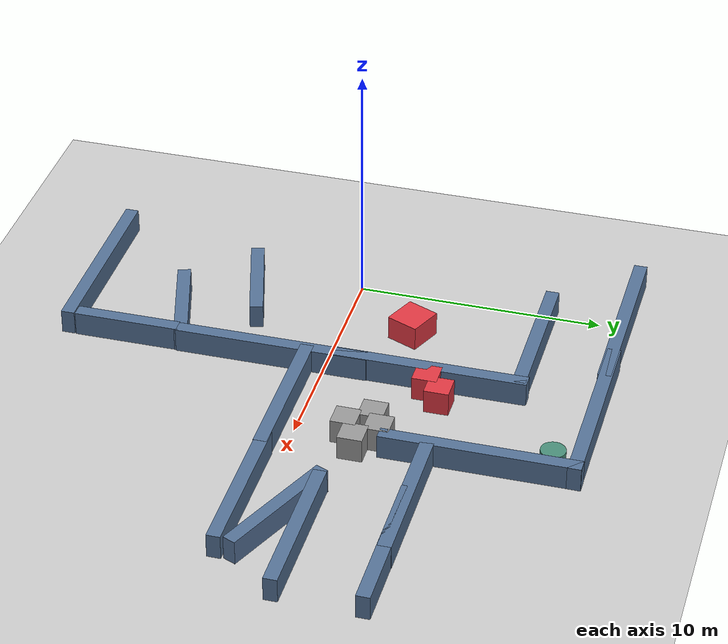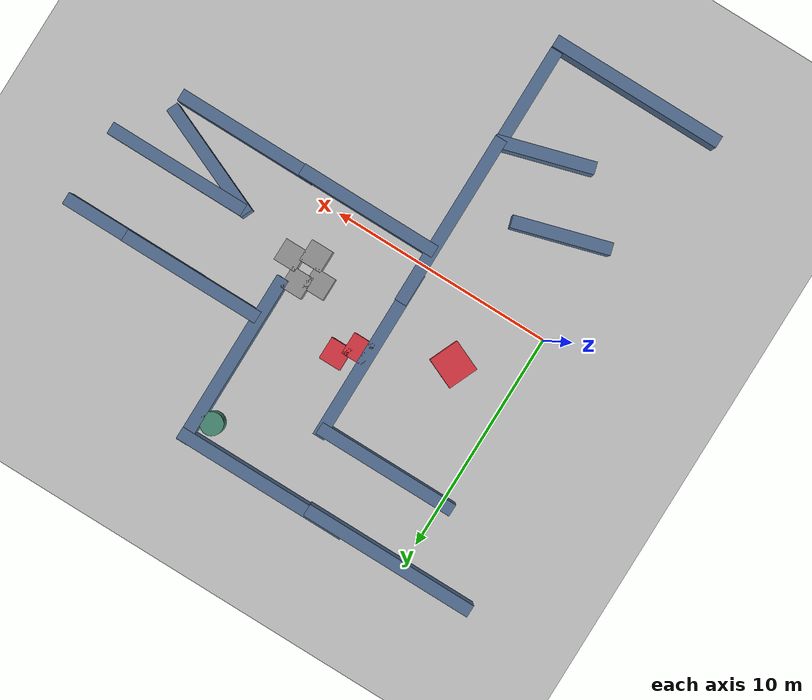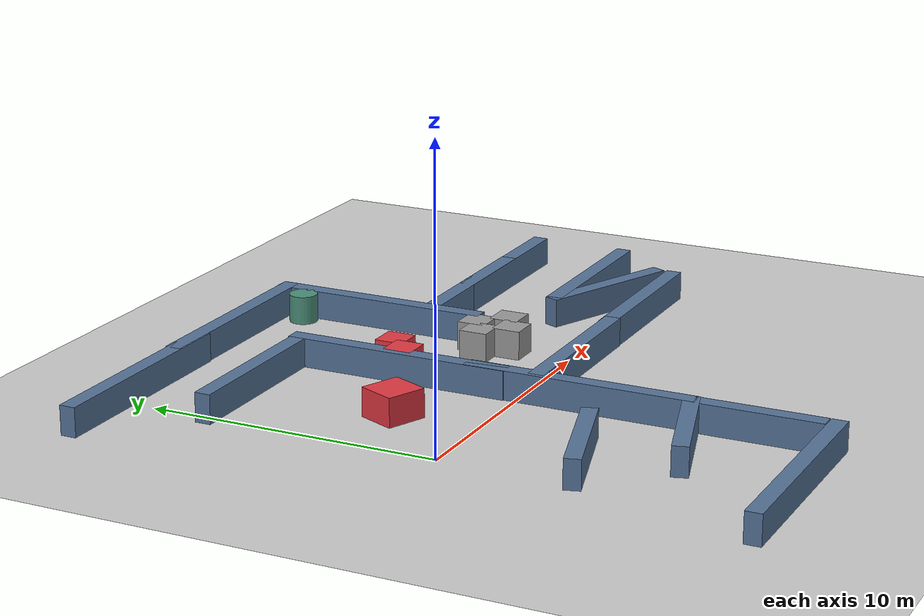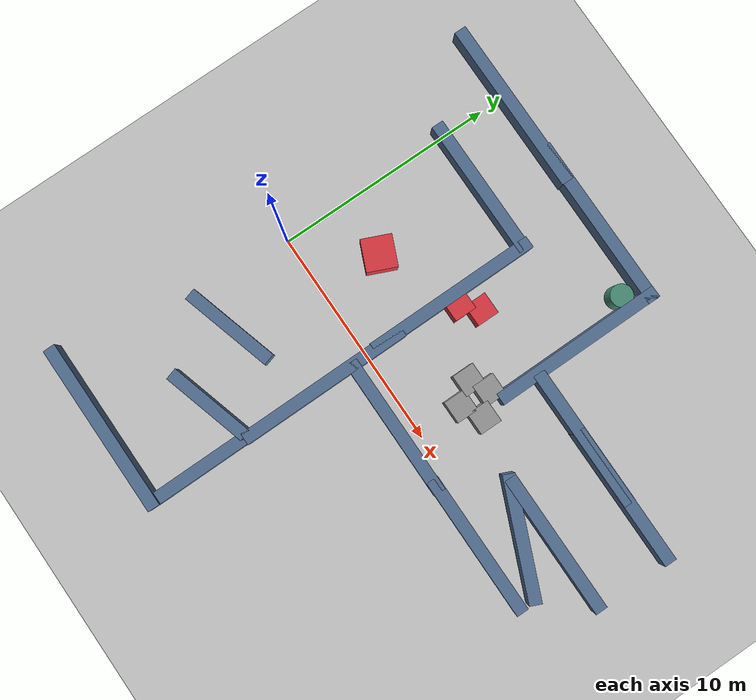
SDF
<sdf version="1.6">
 <world name="default">
  <model name="ground_plane">
   <static>1</static>
   <link name="link">
    <collision name="collision">
     <geometry><plane><normal>0 0 1</normal><size>100 100</size></plane></geometry>
     <surface><friction><ode><mu>100</mu><mu2>50</mu2></ode></friction></surface>
    </collision>
    <visual name="visual">
     <cast_shadows>0</cast_shadows>
     <geometry><plane><normal>0 0 1</normal><size>100 100</size></plane></geometry>
     <material>
      <script><uri>file://media/materials/scripts/gazebo.material</uri><name>Gazebo/Grey</name></script>
     </material>
    </visual>
   </link>
  </model>
  <model name="mazesummer1">
   <pose>0 -0 0.499991 0 -0 0</pose>
   <link name="box10_link">
    <pose>9.80009 2.02423 9e-06 0 -0 0</pose>
    <inertial>
     <mass>1</mass>
     <inertia>
      <ixx>0.166667</ixx>
      <ixy>0</ixy>
      <ixz>0</ixz>
      <iyy>0.166667</iyy>
      <iyz>0</iyz>
      <izz>0.166667</izz>
     </inertia>
    </inertial>
    <visual name="box10_visual">
     <geometry><box><size>1 1 1</size></box></geometry>
     <material>
      <lighting>1</lighting>
      <script><uri>file://media/materials/scripts/gazebo.material</uri><name>Gazebo/Grey</name></script>
      <ambient>1 1 1 1</ambient>
      <diffuse>1 1 1 1</diffuse>
      <specular>0.01 0.01 0.01 1</specular>
      <emissive>0 0 0 1</emissive>
     </material>
    </visual>
    <collision name="collision">
     <geometry><box><size>1 1 1</size></box></geometry>
     <surface>
      <friction>
       <ode><mu>1</mu><mu2>1</mu2><fdir1>0 0 0</fdir1><slip1>0</slip1><slip2>0</slip2></ode>
       <torsional>
        <coefficient>1</coefficient>
        <patch_radius>0</patch_radius>
        <surface_radius>0</surface_radius>
        <use_patch_radius>1</use_patch_radius>
        <ode><slip>0</slip></ode>
       </torsional>
      </friction>
      <bounce><restitution_coefficient>0</restitution_coefficient><threshold>1e+06</threshold></bounce>
      <contact>
       <collide_without_contact>0</collide_without_contact>
       <collide_without_contact_bitmask>1</collide_without_contact_bitmask>
       <collide_bitmask>1</collide_bitmask>
       <ode>
        <soft_cfm>0</soft_cfm>
        <soft_erp>0.2</soft_erp>
        <kp>1e+13</kp>
        <kd>1</kd>
        <max_vel>0.01</max_vel>
        <min_depth>0</min_depth>
       </ode>
       <bullet>
        <split_impulse>1</split_impulse>
        <split_impulse_penetration_threshold>-0.01</split_impulse_penetration_threshold>
        <soft_cfm>0</soft_cfm>
        <soft_erp>0.2</soft_erp>
        <kp>1e+13</kp>
        <kd>1</kd>
       </bullet>
      </contact>
     </surface>
    </collision>
   </link>
   <link name="link_11">
    <pose>6.31823 4.34711 9e-06 0 -0 0</pose>
    <inertial>
     <mass>1</mass>
     <inertia>
      <ixx>0.166667</ixx>
      <ixy>0</ixy>
      <ixz>0</ixz>
      <iyy>0.166667</iyy>
      <iyz>0</iyz>
      <izz>0.166667</izz>
     </inertia>
    </inertial>
    <visual name="visual">
     <geometry><box><size>1 1 1</size></box></geometry>
     <material>
      <lighting>1</lighting>
      <script><uri>file://media/materials/scripts/gazebo.material</uri><name>Gazebo/Grey</name></script>
      <ambient>0.882353 0.219608 0.262745 1</ambient>
      <diffuse>0.882353 0.219608 0.262745 1</diffuse>
      <specular>0.01 0.01 0.01 1</specular>
      <emissive>0 0 0 1</emissive>
     </material>
    </visual>
    <collision name="collision">
     <geometry><box><size>1 1 1</size></box></geometry>
     <surface>
      <friction>
       <ode><mu>1</mu><mu2>1</mu2><fdir1>0 0 0</fdir1><slip1>0</slip1><slip2>0</slip2></ode>
       <torsional>
        <coefficient>1</coefficient>
        <patch_radius>0</patch_radius>
        <surface_radius>0</surface_radius>
        <use_patch_radius>1</use_patch_radius>
        <ode><slip>0</slip></ode>
       </torsional>
      </friction>
      <bounce><restitution_coefficient>0</restitution_coefficient><threshold>1e+06</threshold></bounce>
      <contact>
       <collide_without_contact>0</collide_without_contact>
       <collide_without_contact_bitmask>1</collide_without_contact_bitmask>
       <collide_bitmask>1</collide_bitmask>
       <ode>
        <soft_cfm>0</soft_cfm>
        <soft_erp>0.2</soft_erp>
        <kp>1e+13</kp>
        <kd>1</kd>
        <max_vel>0.01</max_vel>
        <min_depth>0</min_depth>
       </ode>
       <bullet>
        <split_impulse>1</split_impulse>
        <split_impulse_penetration_threshold>-0.01</split_impulse_penetration_threshold>
        <soft_cfm>0</soft_cfm>
        <soft_erp>0.2</soft_erp>
        <kp>1e+13</kp>
        <kd>1</kd>
       </bullet>
      </contact>
     </surface>
    </collision>
   </link>
   <link name="link_12">
    <pose>7.00494 5.00129 9e-06 0 -0 0</pose>
    <inertial>
     <mass>1</mass>
     <inertia>
      <ixx>0.166667</ixx>
      <ixy>0</ixy>
      <ixz>0</ixz>
      <iyy>0.166667</iyy>
      <iyz>0</iyz>
      <izz>0.166667</izz>
     </inertia>
    </inertial>
    <visual name="visual">
     <geometry><box><size>1 1 1</size></box></geometry>
     <material>
      <lighting>1</lighting>
      <script><uri>file://media/materials/scripts/gazebo.material</uri><name>Gazebo/Grey</name></script>
      <ambient>0.882353 0.219608 0.262745 1</ambient>
      <diffuse>0.882353 0.219608 0.262745 1</diffuse>
      <specular>0.01 0.01 0.01 1</specular>
      <emissive>0 0 0 1</emissive>
     </material>
    </visual>
    <collision name="collision">
     <geometry><box><size>1 1 1</size></box></geometry>
     <surface>
      <friction>
       <ode><mu>1</mu><mu2>1</mu2><fdir1>0 0 0</fdir1><slip1>0</slip1><slip2>0</slip2></ode>
       <torsional>
        <coefficient>1</coefficient>
        <patch_radius>0</patch_radius>
        <surface_radius>0</surface_radius>
        <use_patch_radius>1</use_patch_radius>
        <ode><slip>0</slip></ode>
       </torsional>
      </friction>
      <bounce><restitution_coefficient>0</restitution_coefficient><threshold>1e+06</threshold></bounce>
      <contact>
       <collide_without_contact>0</collide_without_contact>
       <collide_without_contact_bitmask>1</collide_without_contact_bitmask>
       <collide_bitmask>1</collide_bitmask>
       <ode>
        <soft_cfm>0</soft_cfm>
        <soft_erp>0.2</soft_erp>
        <kp>1e+13</kp>
        <kd>1</kd>
        <max_vel>0.01</max_vel>
        <min_depth>0</min_depth>
       </ode>
       <bullet>
        <split_impulse>1</split_impulse>
        <split_impulse_penetration_threshold>-0.01</split_impulse_penetration_threshold>
        <soft_cfm>0</soft_cfm>
        <soft_erp>0.2</soft_erp>
        <kp>1e+13</kp>
        <kd>1</kd>
       </bullet>
      </contact>
     </surface>
    </collision>
   </link>
   <link name="box9_link">
    <pose>10.7124 2.54643 9e-06 0 -0 0</pose>
    <inertial>
     <mass>1</mass>
     <inertia>
      <ixx>0.166667</ixx>
      <ixy>0</ixy>
      <ixz>0</ixz>
      <iyy>0.166667</iyy>
      <iyz>0</iyz>
      <izz>0.166667</izz>
     </inertia>
    </inertial>
    <visual name="box9_visual">
     <geometry><box><size>1 1 1</size></box></geometry>
     <material>
      <lighting>1</lighting>
      <script><uri>file://media/materials/scripts/gazebo.material</uri><name>Gazebo/Grey</name></script>
      <ambient>1 1 1 1</ambient>
      <diffuse>1 1 1 1</diffuse>
      <specular>0.01 0.01 0.01 1</specular>
      <emissive>0 0 0 1</emissive>
     </material>
    </visual>
    <collision name="collision">
     <geometry><box><size>1 1 1</size></box></geometry>
     <surface>
      <friction>
       <ode><mu>1</mu><mu2>1</mu2><fdir1>0 0 0</fdir1><slip1>0</slip1><slip2>0</slip2></ode>
       <torsional>
        <coefficient>1</coefficient>
        <patch_radius>0</patch_radius>
        <surface_radius>0</surface_radius>
        <use_patch_radius>1</use_patch_radius>
        <ode><slip>0</slip></ode>
       </torsional>
      </friction>
      <bounce><restitution_coefficient>0</restitution_coefficient><threshold>1e+06</threshold></bounce>
      <contact>
       <collide_without_contact>0</collide_without_contact>
       <collide_without_contact_bitmask>1</collide_without_contact_bitmask>
       <collide_bitmask>1</collide_bitmask>
       <ode>
        <soft_cfm>0</soft_cfm>
        <soft_erp>0.2</soft_erp>
        <kp>1e+13</kp>
        <kd>1</kd>
        <max_vel>0.01</max_vel>
        <min_depth>0</min_depth>
       </ode>
       <bullet>
        <split_impulse>1</split_impulse>
        <split_impulse_penetration_threshold>-0.01</split_impulse_penetration_threshold>
        <soft_cfm>0</soft_cfm>
        <soft_erp>0.2</soft_erp>
        <kp>1e+13</kp>
        <kd>1</kd>
       </bullet>
      </contact>
     </surface>
    </collision>
   </link>
   <link name="wall8_link">
    <pose>2.19804 -10.643 9e-06 0 -0 0</pose>
    <inertial>
     <mass>4.30693</mass>
     <inertia><ixx>0.46587</ixx><ixy>0</ixy><ixz>0</ixz><iyy>22.6991</iyy><iyz>0</iyz><izz>22.4471</izz></inertia>
    </inertial>
    <visual name="visual">
     <geometry><box><size>7.88951 0.545905 1</size></box></geometry>
     <material>
      <lighting>1</lighting>
      <script><uri>file://media/materials/scripts/gazebo.material</uri><name>Gazebo/Grey</name></script>
      <ambient>0.333333 0.447059 0.592157 1</ambient>
      <diffuse>0.333333 0.447059 0.592157 1</diffuse>
      <specular>0.01 0.01 0.01 1</specular>
      <emissive>0 0 0 1</emissive>
      <shader type="pixel"/>
     </material>
    </visual>
    <collision name="collision">
     <geometry><box><size>7.88951 0.545905 1</size></box></geometry>
     <surface>
      <friction>
       <ode><mu>1</mu><mu2>1</mu2><fdir1>0 0 0</fdir1><slip1>0</slip1><slip2>0</slip2></ode>
       <torsional>
        <coefficient>1</coefficient>
        <patch_radius>0</patch_radius>
        <surface_radius>0</surface_radius>
        <use_patch_radius>1</use_patch_radius>
        <ode><slip>0</slip></ode>
       </torsional>
      </friction>
      <bounce><restitution_coefficient>0</restitution_coefficient><threshold>1e+06</threshold></bounce>
      <contact>
       <collide_without_contact>0</collide_without_contact>
       <collide_without_contact_bitmask>1</collide_without_contact_bitmask>
       <collide_bitmask>1</collide_bitmask>
       <ode>
        <soft_cfm>0</soft_cfm>
        <soft_erp>0.2</soft_erp>
        <kp>1e+13</kp>
        <kd>1</kd>
        <max_vel>0.01</max_vel>
        <min_depth>0</min_depth>
       </ode>
       <bullet>
        <split_impulse>1</split_impulse>
        <split_impulse_penetration_threshold>-0.01</split_impulse_penetration_threshold>
        <soft_cfm>0</soft_cfm>
        <soft_erp>0.2</soft_erp>
        <kp>1e+13</kp>
        <kd>1</kd>
       </bullet>
      </contact>
     </surface>
    </collision>
   </link>
   <link name="wall31_link">
    <pose>0.695253 11.0512 9e-06 0 -0 0</pose>
    <inertial>
     <mass>4.30693</mass>
     <inertia><ixx>0.46587</ixx><ixy>0</ixy><ixz>0</ixz><iyy>22.6991</iyy><iyz>0</iyz><izz>22.4471</izz></inertia>
    </inertial>
    <visual name="visual">
     <geometry><box><size>7.88951 0.545905 1</size></box></geometry>
     <material>
      <lighting>1</lighting>
      <script><uri>file://media/materials/scripts/gazebo.material</uri><name>Gazebo/Grey</name></script>
      <ambient>0.333333 0.447059 0.592157 1</ambient>
      <diffuse>0.333333 0.447059 0.592157 1</diffuse>
      <specular>0.01 0.01 0.01 1</specular>
      <emissive>0 0 0 1</emissive>
      <shader type="pixel"/>
     </material>
    </visual>
    <collision name="collision">
     <geometry><box><size>7.88951 0.545905 1</size></box></geometry>
     <surface>
      <friction>
       <ode><mu>1</mu><mu2>1</mu2><fdir1>0 0 0</fdir1><slip1>0</slip1><slip2>0</slip2></ode>
       <torsional>
        <coefficient>1</coefficient>
        <patch_radius>0</patch_radius>
        <surface_radius>0</surface_radius>
        <use_patch_radius>1</use_patch_radius>
        <ode><slip>0</slip></ode>
       </torsional>
      </friction>
      <bounce><restitution_coefficient>0</restitution_coefficient><threshold>1e+06</threshold></bounce>
      <contact>
       <collide_without_contact>0</collide_without_contact>
       <collide_without_contact_bitmask>1</collide_without_contact_bitmask>
       <collide_bitmask>1</collide_bitmask>
       <ode>
        <soft_cfm>0</soft_cfm>
        <soft_erp>0.2</soft_erp>
        <kp>1e+13</kp>
        <kd>1</kd>
        <max_vel>0.01</max_vel>
        <min_depth>0</min_depth>
       </ode>
       <bullet>
        <split_impulse>1</split_impulse>
        <split_impulse_penetration_threshold>-0.01</split_impulse_penetration_threshold>
        <soft_cfm>0</soft_cfm>
        <soft_erp>0.2</soft_erp>
        <kp>1e+13</kp>
        <kd>1</kd>
       </bullet>
      </contact>
     </surface>
    </collision>
   </link>
   <link name="wall32_link">
    <pose>6.79233 11.1081 9e-06 0 -0 0</pose>
    <inertial>
     <mass>4.30693</mass>
     <inertia><ixx>0.46587</ixx><ixy>0</ixy><ixz>0</ixz><iyy>22.6991</iyy><iyz>0</iyz><izz>22.4471</izz></inertia>
    </inertial>
    <visual name="visual">
     <geometry><box><size>7.88951 0.545905 1</size></box></geometry>
     <material>
      <lighting>1</lighting>
      <script><uri>file://media/materials/scripts/gazebo.material</uri><name>Gazebo/Grey</name></script>
      <ambient>0.333333 0.447059 0.592157 1</ambient>
      <diffuse>0.333333 0.447059 0.592157 1</diffuse>
      <specular>0.01 0.01 0.01 1</specular>
      <emissive>0 0 0 1</emissive>
      <shader type="pixel"/>
     </material>
    </visual>
    <collision name="collision">
     <geometry><box><size>7.88951 0.545905 1</size></box></geometry>
     <surface>
      <friction>
       <ode><mu>1</mu><mu2>1</mu2><fdir1>0 0 0</fdir1><slip1>0</slip1><slip2>0</slip2></ode>
       <torsional>
        <coefficient>1</coefficient>
        <patch_radius>0</patch_radius>
        <surface_radius>0</surface_radius>
        <use_patch_radius>1</use_patch_radius>
        <ode><slip>0</slip></ode>
       </torsional>
      </friction>
      <bounce><restitution_coefficient>0</restitution_coefficient><threshold>1e+06</threshold></bounce>
      <contact>
       <collide_without_contact>0</collide_without_contact>
       <collide_without_contact_bitmask>1</collide_without_contact_bitmask>
       <collide_bitmask>1</collide_bitmask>
       <ode>
        <soft_cfm>0</soft_cfm>
        <soft_erp>0.2</soft_erp>
        <kp>1e+13</kp>
        <kd>1</kd>
        <max_vel>0.01</max_vel>
        <min_depth>0</min_depth>
       </ode>
       <bullet>
        <split_impulse>1</split_impulse>
        <split_impulse_penetration_threshold>-0.01</split_impulse_penetration_threshold>
        <soft_cfm>0</soft_cfm>
        <soft_erp>0.2</soft_erp>
        <kp>1e+13</kp>
        <kd>1</kd>
       </bullet>
      </contact>
     </surface>
    </collision>
   </link>
   <link name="wall6_link">
    <pose>2.76705 7.92871 9e-06 0 -0 0</pose>
    <inertial>
     <mass>3.50538</mass>
     <inertia><ixx>0.379168</ixx><ixy>0</ixy><ixz>0</ixz><iyy>12.3366</iyy><iyz>0</iyz><izz>12.1315</izz></inertia>
    </inertial>
    <visual name="visual">
     <geometry><box><size>6.42122 0.545905 1</size></box></geometry>
     <material>
      <lighting>1</lighting>
      <script><uri>file://media/materials/scripts/gazebo.material</uri><name>Gazebo/Grey</name></script>
      <ambient>0.333333 0.447059 0.592157 1</ambient>
      <diffuse>0.333333 0.447059 0.592157 1</diffuse>
      <specular>0.01 0.01 0.01 1</specular>
      <emissive>0 0 0 1</emissive>
      <shader type="pixel"/>
     </material>
    </visual>
    <collision name="collision">
     <geometry><box><size>6.42122 0.545905 1</size></box></geometry>
     <surface>
      <friction>
       <ode><mu>1</mu><mu2>1</mu2><fdir1>0 0 0</fdir1><slip1>0</slip1><slip2>0</slip2></ode>
       <torsional>
        <coefficient>1</coefficient>
        <patch_radius>0</patch_radius>
        <surface_radius>0</surface_radius>
        <use_patch_radius>1</use_patch_radius>
        <ode><slip>0</slip></ode>
       </torsional>
      </friction>
      <bounce><restitution_coefficient>0</restitution_coefficient><threshold>1e+06</threshold></bounce>
      <contact>
       <collide_without_contact>0</collide_without_contact>
       <collide_without_contact_bitmask>1</collide_without_contact_bitmask>
       <collide_bitmask>1</collide_bitmask>
       <ode>
        <soft_cfm>0</soft_cfm>
        <soft_erp>0.2</soft_erp>
        <kp>1e+13</kp>
        <kd>1</kd>
        <max_vel>0.01</max_vel>
        <min_depth>0</min_depth>
       </ode>
       <bullet>
        <split_impulse>1</split_impulse>
        <split_impulse_penetration_threshold>-0.01</split_impulse_penetration_threshold>
        <soft_cfm>0</soft_cfm>
        <soft_erp>0.2</soft_erp>
        <kp>1e+13</kp>
        <kd>1</kd>
       </bullet>
      </contact>
     </surface>
    </collision>
   </link>
   <link name="wall14_link">
    <pose>8.96944 -0.687018 9e-06 0 -0 0</pose>
    <inertial>
     <mass>3.50538</mass>
     <inertia><ixx>0.379168</ixx><ixy>0</ixy><ixz>0</ixz><iyy>12.3366</iyy><iyz>0</iyz><izz>12.1315</izz></inertia>
    </inertial>
    <visual name="visual">
     <geometry><box><size>6.42122 0.545905 1</size></box></geometry>
     <material>
      <lighting>1</lighting>
      <script><uri>file://media/materials/scripts/gazebo.material</uri><name>Gazebo/Grey</name></script>
      <ambient>0.333333 0.447059 0.592157 1</ambient>
      <diffuse>0.333333 0.447059 0.592157 1</diffuse>
      <specular>0.01 0.01 0.01 1</specular>
      <emissive>0 0 0 1</emissive>
      <shader type="pixel"/>
     </material>
    </visual>
    <collision name="collision">
     <geometry><box><size>6.42122 0.545905 1</size></box></geometry>
     <surface>
      <friction>
       <ode><mu>1</mu><mu2>1</mu2><fdir1>0 0 0</fdir1><slip1>0</slip1><slip2>0</slip2></ode>
       <torsional>
        <coefficient>1</coefficient>
        <patch_radius>0</patch_radius>
        <surface_radius>0</surface_radius>
        <use_patch_radius>1</use_patch_radius>
        <ode><slip>0</slip></ode>
       </torsional>
      </friction>
      <bounce><restitution_coefficient>0</restitution_coefficient><threshold>1e+06</threshold></bounce>
      <contact>
       <collide_without_contact>0</collide_without_contact>
       <collide_without_contact_bitmask>1</collide_without_contact_bitmask>
       <collide_bitmask>1</collide_bitmask>
       <ode>
        <soft_cfm>0</soft_cfm>
        <soft_erp>0.2</soft_erp>
        <kp>1e+13</kp>
        <kd>1</kd>
        <max_vel>0.01</max_vel>
        <min_depth>0</min_depth>
       </ode>
       <bullet>
        <split_impulse>1</split_impulse>
        <split_impulse_penetration_threshold>-0.01</split_impulse_penetration_threshold>
        <soft_cfm>0</soft_cfm>
        <soft_erp>0.2</soft_erp>
        <kp>1e+13</kp>
        <kd>1</kd>
       </bullet>
      </contact>
     </surface>
    </collision>
   </link>
   <link name="wall33_link">
    <pose>13.7042 5.43273 9e-06 0 -0 0</pose>
    <inertial>
     <mass>3.50538</mass>
     <inertia><ixx>0.379168</ixx><ixy>0</ixy><ixz>0</ixz><iyy>12.3366</iyy><iyz>0</iyz><izz>12.1315</izz></inertia>
    </inertial>
    <visual name="visual">
     <geometry><box><size>6.42122 0.545905 1</size></box></geometry>
     <material>
      <lighting>1</lighting>
      <script><uri>file://media/materials/scripts/gazebo.material</uri><name>Gazebo/Grey</name></script>
      <ambient>0.333333 0.447059 0.592157 1</ambient>
      <diffuse>0.333333 0.447059 0.592157 1</diffuse>
      <specular>0.01 0.01 0.01 1</specular>
      <emissive>0 0 0 1</emissive>
      <shader type="pixel"/>
     </material>
    </visual>
    <collision name="collision">
     <geometry><box><size>6.42122 0.545905 1</size></box></geometry>
     <surface>
      <friction>
       <ode><mu>1</mu><mu2>1</mu2><fdir1>0 0 0</fdir1><slip1>0</slip1><slip2>0</slip2></ode>
       <torsional>
        <coefficient>1</coefficient>
        <patch_radius>0</patch_radius>
        <surface_radius>0</surface_radius>
        <use_patch_radius>1</use_patch_radius>
        <ode><slip>0</slip></ode>
       </torsional>
      </friction>
      <bounce><restitution_coefficient>0</restitution_coefficient><threshold>1e+06</threshold></bounce>
      <contact>
       <collide_without_contact>0</collide_without_contact>
       <collide_without_contact_bitmask>1</collide_without_contact_bitmask>
       <collide_bitmask>1</collide_bitmask>
       <ode>
        <soft_cfm>0</soft_cfm>
        <soft_erp>0.2</soft_erp>
        <kp>1e+13</kp>
        <kd>1</kd>
        <max_vel>0.01</max_vel>
        <min_depth>0</min_depth>
       </ode>
       <bullet>
        <split_impulse>1</split_impulse>
        <split_impulse_penetration_threshold>-0.01</split_impulse_penetration_threshold>
        <soft_cfm>0</soft_cfm>
        <soft_erp>0.2</soft_erp>
        <kp>1e+13</kp>
        <kd>1</kd>
       </bullet>
      </contact>
     </surface>
    </collision>
   </link>
   <link name="wall17_link">
    <pose>16.5218 2.00661 9e-06 0 -0 0</pose>
    <inertial>
     <mass>3.50538</mass>
     <inertia><ixx>0.379168</ixx><ixy>0</ixy><ixz>0</ixz><iyy>12.3366</iyy><iyz>0</iyz><izz>12.1315</izz></inertia>
    </inertial>
    <visual name="visual">
     <geometry><box><size>6.42122 0.545905 1</size></box></geometry>
     <material>
      <lighting>1</lighting>
      <script><uri>file://media/materials/scripts/gazebo.material</uri><name>Gazebo/Grey</name></script>
      <ambient>0.333333 0.447059 0.592157 1</ambient>
      <diffuse>0.333333 0.447059 0.592157 1</diffuse>
      <specular>0.01 0.01 0.01 1</specular>
      <emissive>0 0 0 1</emissive>
      <shader type="pixel"/>
     </material>
    </visual>
    <collision name="collision">
     <geometry><box><size>6.42122 0.545905 1</size></box></geometry>
     <surface>
      <friction>
       <ode><mu>1</mu><mu2>1</mu2><fdir1>0 0 0</fdir1><slip1>0</slip1><slip2>0</slip2></ode>
       <torsional>
        <coefficient>1</coefficient>
        <patch_radius>0</patch_radius>
        <surface_radius>0</surface_radius>
        <use_patch_radius>1</use_patch_radius>
        <ode><slip>0</slip></ode>
       </torsional>
      </friction>
      <bounce><restitution_coefficient>0</restitution_coefficient><threshold>1e+06</threshold></bounce>
      <contact>
       <collide_without_contact>0</collide_without_contact>
       <collide_without_contact_bitmask>1</collide_without_contact_bitmask>
       <collide_bitmask>1</collide_bitmask>
       <ode>
        <soft_cfm>0</soft_cfm>
        <soft_erp>0.2</soft_erp>
        <kp>1e+13</kp>
        <kd>1</kd>
        <max_vel>0.01</max_vel>
        <min_depth>0</min_depth>
       </ode>
       <bullet>
        <split_impulse>1</split_impulse>
        <split_impulse_penetration_threshold>-0.01</split_impulse_penetration_threshold>
        <soft_cfm>0</soft_cfm>
        <soft_erp>0.2</soft_erp>
        <kp>1e+13</kp>
        <kd>1</kd>
       </bullet>
      </contact>
     </surface>
    </collision>
   </link>
   <link name="wall37_link">
    <pose>16.5551 5.42013 9e-06 0 -0 0</pose>
    <inertial>
     <mass>3.50538</mass>
     <inertia><ixx>0.379168</ixx><ixy>0</ixy><ixz>0</ixz><iyy>12.3366</iyy><iyz>0</iyz><izz>12.1315</izz></inertia>
    </inertial>
    <visual name="visual">
     <geometry><box><size>6.42122 0.545905 1</size></box></geometry>
     <material>
      <lighting>1</lighting>
      <script><uri>file://media/materials/scripts/gazebo.material</uri><name>Gazebo/Grey</name></script>
      <ambient>0.333333 0.447059 0.592157 1</ambient>
      <diffuse>0.333333 0.447059 0.592157 1</diffuse>
      <specular>0.01 0.01 0.01 1</specular>
      <emissive>0 0 0 1</emissive>
      <shader type="pixel"/>
     </material>
    </visual>
    <collision name="collision">
     <geometry><box><size>6.42122 0.545905 1</size></box></geometry>
     <surface>
      <friction>
       <ode><mu>1</mu><mu2>1</mu2><fdir1>0 0 0</fdir1><slip1>0</slip1><slip2>0</slip2></ode>
       <torsional>
        <coefficient>1</coefficient>
        <patch_radius>0</patch_radius>
        <surface_radius>0</surface_radius>
        <use_patch_radius>1</use_patch_radius>
        <ode><slip>0</slip></ode>
       </torsional>
      </friction>
      <bounce><restitution_coefficient>0</restitution_coefficient><threshold>1e+06</threshold></bounce>
      <contact>
       <collide_without_contact>0</collide_without_contact>
       <collide_without_contact_bitmask>1</collide_without_contact_bitmask>
       <collide_bitmask>1</collide_bitmask>
       <ode>
        <soft_cfm>0</soft_cfm>
        <soft_erp>0.2</soft_erp>
        <kp>1e+13</kp>
        <kd>1</kd>
        <max_vel>0.01</max_vel>
        <min_depth>0</min_depth>
       </ode>
       <bullet>
        <split_impulse>1</split_impulse>
        <split_impulse_penetration_threshold>-0.01</split_impulse_penetration_threshold>
        <soft_cfm>0</soft_cfm>
        <soft_erp>0.2</soft_erp>
        <kp>1e+13</kp>
        <kd>1</kd>
       </bullet>
      </contact>
     </surface>
    </collision>
   </link>
   <link name="wall15_link">
    <pose>14.7931 -0.66198 9e-06 0 -0 0</pose>
    <inertial>
     <mass>3.50538</mass>
     <inertia><ixx>0.379168</ixx><ixy>0</ixy><ixz>0</ixz><iyy>12.3366</iyy><iyz>0</iyz><izz>12.1315</izz></inertia>
    </inertial>
    <visual name="visual">
     <geometry><box><size>6.42122 0.545905 1</size></box></geometry>
     <material>
      <lighting>1</lighting>
      <script><uri>file://media/materials/scripts/gazebo.material</uri><name>Gazebo/Grey</name></script>
      <ambient>0.333333 0.447059 0.592157 1</ambient>
      <diffuse>0.333333 0.447059 0.592157 1</diffuse>
      <specular>0.01 0.01 0.01 1</specular>
      <emissive>0 0 0 1</emissive>
      <shader type="pixel"/>
     </material>
    </visual>
    <collision name="collision">
     <geometry><box><size>6.42122 0.545905 1</size></box></geometry>
     <surface>
      <friction>
       <ode><mu>1</mu><mu2>1</mu2><fdir1>0 0 0</fdir1><slip1>0</slip1><slip2>0</slip2></ode>
       <torsional>
        <coefficient>1</coefficient>
        <patch_radius>0</patch_radius>
        <surface_radius>0</surface_radius>
        <use_patch_radius>1</use_patch_radius>
        <ode><slip>0</slip></ode>
       </torsional>
      </friction>
      <bounce><restitution_coefficient>0</restitution_coefficient><threshold>1e+06</threshold></bounce>
      <contact>
       <collide_without_contact>0</collide_without_contact>
       <collide_without_contact_bitmask>1</collide_without_contact_bitmask>
       <collide_bitmask>1</collide_bitmask>
       <ode>
        <soft_cfm>0</soft_cfm>
        <soft_erp>0.2</soft_erp>
        <kp>1e+13</kp>
        <kd>1</kd>
        <max_vel>0.01</max_vel>
        <min_depth>0</min_depth>
       </ode>
       <bullet>
        <split_impulse>1</split_impulse>
        <split_impulse_penetration_threshold>-0.01</split_impulse_penetration_threshold>
        <soft_cfm>0</soft_cfm>
        <soft_erp>0.2</soft_erp>
        <kp>1e+13</kp>
        <kd>1</kd>
       </bullet>
      </contact>
     </surface>
    </collision>
   </link>
   <link name="wall11_link">
    <pose>5.88859 -2.1218 9e-06 0 0 -1.56693</pose>
    <inertial>
     <mass>4.30693</mass>
     <inertia><ixx>0.46587</ixx><ixy>0</ixy><ixz>0</ixz><iyy>22.6991</iyy><iyz>0</iyz><izz>22.4471</izz></inertia>
    </inertial>
    <visual name="visual">
     <geometry><box><size>7.88951 0.545905 1</size></box></geometry>
     <material>
      <lighting>1</lighting>
      <script><uri>file://media/materials/scripts/gazebo.material</uri><name>Gazebo/Grey</name></script>
      <ambient>0.333333 0.447059 0.592157 1</ambient>
      <diffuse>0.333333 0.447059 0.592157 1</diffuse>
      <specular>0.01 0.01 0.01 1</specular>
      <emissive>0 0 0 1</emissive>
      <shader type="pixel"/>
     </material>
    </visual>
    <collision name="collision">
     <geometry><box><size>7.88951 0.545905 1</size></box></geometry>
     <surface>
      <friction>
       <ode><mu>1</mu><mu2>1</mu2><fdir1>0 0 0</fdir1><slip1>0</slip1><slip2>0</slip2></ode>
       <torsional>
        <coefficient>1</coefficient>
        <patch_radius>0</patch_radius>
        <surface_radius>0</surface_radius>
        <use_patch_radius>1</use_patch_radius>
        <ode><slip>0</slip></ode>
       </torsional>
      </friction>
      <bounce><restitution_coefficient>0</restitution_coefficient><threshold>1e+06</threshold></bounce>
      <contact>
       <collide_without_contact>0</collide_without_contact>
       <collide_without_contact_bitmask>1</collide_without_contact_bitmask>
       <collide_bitmask>1</collide_bitmask>
       <ode>
        <soft_cfm>0</soft_cfm>
        <soft_erp>0.2</soft_erp>
        <kp>1e+13</kp>
        <kd>1</kd>
        <max_vel>0.01</max_vel>
        <min_depth>0</min_depth>
       </ode>
       <bullet>
        <split_impulse>1</split_impulse>
        <split_impulse_penetration_threshold>-0.01</split_impulse_penetration_threshold>
        <soft_cfm>0</soft_cfm>
        <soft_erp>0.2</soft_erp>
        <kp>1e+13</kp>
        <kd>1</kd>
       </bullet>
      </contact>
     </surface>
    </collision>
   </link>
   <link name="wall27_link">
    <pose>10.4715 7.44804 9e-06 0 0 -1.56693</pose>
    <inertial>
     <mass>4.30693</mass>
     <inertia><ixx>0.46587</ixx><ixy>0</ixy><ixz>0</ixz><iyy>22.6991</iyy><iyz>0</iyz><izz>22.4471</izz></inertia>
    </inertial>
    <visual name="visual">
     <geometry><box><size>7.88951 0.545905 1</size></box></geometry>
     <material>
      <lighting>1</lighting>
      <script><uri>file://media/materials/scripts/gazebo.material</uri><name>Gazebo/Grey</name></script>
      <ambient>0.333333 0.447059 0.592157 1</ambient>
      <diffuse>0.333333 0.447059 0.592157 1</diffuse>
      <specular>0.01 0.01 0.01 1</specular>
      <emissive>0 0 0 1</emissive>
      <shader type="pixel"/>
     </material>
    </visual>
    <collision name="collision">
     <geometry><box><size>7.88951 0.545905 1</size></box></geometry>
     <surface>
      <friction>
       <ode><mu>1</mu><mu2>1</mu2><fdir1>0 0 0</fdir1><slip1>0</slip1><slip2>0</slip2></ode>
       <torsional>
        <coefficient>1</coefficient>
        <patch_radius>0</patch_radius>
        <surface_radius>0</surface_radius>
        <use_patch_radius>1</use_patch_radius>
        <ode><slip>0</slip></ode>
       </torsional>
      </friction>
      <bounce><restitution_coefficient>0</restitution_coefficient><threshold>1e+06</threshold></bounce>
      <contact>
       <collide_without_contact>0</collide_without_contact>
       <collide_without_contact_bitmask>1</collide_without_contact_bitmask>
       <collide_bitmask>1</collide_bitmask>
       <ode>
        <soft_cfm>0</soft_cfm>
        <soft_erp>0.2</soft_erp>
        <kp>1e+13</kp>
        <kd>1</kd>
        <max_vel>0.01</max_vel>
        <min_depth>0</min_depth>
       </ode>
       <bullet>
        <split_impulse>1</split_impulse>
        <split_impulse_penetration_threshold>-0.01</split_impulse_penetration_threshold>
        <soft_cfm>0</soft_cfm>
        <soft_erp>0.2</soft_erp>
        <kp>1e+13</kp>
        <kd>1</kd>
       </bullet>
      </contact>
     </surface>
    </collision>
   </link>
   <link name="wall13_link">
    <pose>5.82858 4.32024 9e-06 0 0 -1.56693</pose>
    <inertial>
     <mass>4.30693</mass>
     <inertia><ixx>0.46587</ixx><ixy>0</ixy><ixz>0</ixz><iyy>22.6991</iyy><iyz>0</iyz><izz>22.4471</izz></inertia>
    </inertial>
    <visual name="visual">
     <geometry><box><size>7.88951 0.545905 1</size></box></geometry>
     <material>
      <lighting>1</lighting>
      <script><uri>file://media/materials/scripts/gazebo.material</uri><name>Gazebo/Grey</name></script>
      <ambient>0.333333 0.447059 0.592157 1</ambient>
      <diffuse>0.333333 0.447059 0.592157 1</diffuse>
      <specular>0.01 0.01 0.01 1</specular>
      <emissive>0 0 0 1</emissive>
      <shader type="pixel"/>
     </material>
    </visual>
    <collision name="collision">
     <geometry><box><size>7.88951 0.545905 1</size></box></geometry>
     <surface>
      <friction>
       <ode><mu>1</mu><mu2>1</mu2><fdir1>0 0 0</fdir1><slip1>0</slip1><slip2>0</slip2></ode>
       <torsional>
        <coefficient>1</coefficient>
        <patch_radius>0</patch_radius>
        <surface_radius>0</surface_radius>
        <use_patch_radius>1</use_patch_radius>
        <ode><slip>0</slip></ode>
       </torsional>
      </friction>
      <bounce><restitution_coefficient>0</restitution_coefficient><threshold>1e+06</threshold></bounce>
      <contact>
       <collide_without_contact>0</collide_without_contact>
       <collide_without_contact_bitmask>1</collide_without_contact_bitmask>
       <collide_bitmask>1</collide_bitmask>
       <ode>
        <soft_cfm>0</soft_cfm>
        <soft_erp>0.2</soft_erp>
        <kp>1e+13</kp>
        <kd>1</kd>
        <max_vel>0.01</max_vel>
        <min_depth>0</min_depth>
       </ode>
       <bullet>
        <split_impulse>1</split_impulse>
        <split_impulse_penetration_threshold>-0.01</split_impulse_penetration_threshold>
        <soft_cfm>0</soft_cfm>
        <soft_erp>0.2</soft_erp>
        <kp>1e+13</kp>
        <kd>1</kd>
       </bullet>
      </contact>
     </surface>
    </collision>
   </link>
   <link name="wall12_link">
    <pose>4.03057 -6.47031 9e-06 0 -0 0.2833</pose>
    <inertial>
     <mass>2.3361</mass>
     <inertia><ixx>0.25269</ixx><ixy>0</ixy><ixz>0</ixz><iyy>3.75965</iyy><iyz>0</iyz><izz>3.62299</izz></inertia>
    </inertial>
    <visual name="visual">
     <geometry><box><size>4.27931 0.545905 1</size></box></geometry>
     <material>
      <lighting>1</lighting>
      <script><uri>file://media/materials/scripts/gazebo.material</uri><name>Gazebo/Grey</name></script>
      <ambient>0.333333 0.447059 0.592157 1</ambient>
      <diffuse>0.333333 0.447059 0.592157 1</diffuse>
      <specular>0.01 0.01 0.01 1</specular>
      <emissive>0 0 0 1</emissive>
      <shader type="pixel"/>
     </material>
    </visual>
    <collision name="collision">
     <geometry><box><size>4.27931 0.545905 1</size></box></geometry>
     <surface>
      <friction>
       <ode><mu>1</mu><mu2>1</mu2><fdir1>0 0 0</fdir1><slip1>0</slip1><slip2>0</slip2></ode>
       <torsional>
        <coefficient>1</coefficient>
        <patch_radius>0</patch_radius>
        <surface_radius>0</surface_radius>
        <use_patch_radius>1</use_patch_radius>
        <ode><slip>0</slip></ode>
       </torsional>
      </friction>
      <bounce><restitution_coefficient>0</restitution_coefficient><threshold>1e+06</threshold></bounce>
      <contact>
       <collide_without_contact>0</collide_without_contact>
       <collide_without_contact_bitmask>1</collide_without_contact_bitmask>
       <collide_bitmask>1</collide_bitmask>
       <ode>
        <soft_cfm>0</soft_cfm>
        <soft_erp>0.2</soft_erp>
        <kp>1e+13</kp>
        <kd>1</kd>
        <max_vel>0.01</max_vel>
        <min_depth>0</min_depth>
       </ode>
       <bullet>
        <split_impulse>1</split_impulse>
        <split_impulse_penetration_threshold>-0.01</split_impulse_penetration_threshold>
        <soft_cfm>0</soft_cfm>
        <soft_erp>0.2</soft_erp>
        <kp>1e+13</kp>
        <kd>1</kd>
       </bullet>
      </contact>
     </surface>
    </collision>
   </link>
   <link name="wall9_link">
    <pose>5.87005 -8.18932 9e-06 0 0 -1.56693</pose>
    <inertial>
     <mass>2.3361</mass>
     <inertia><ixx>0.25269</ixx><ixy>0</ixy><ixz>0</ixz><iyy>3.75965</iyy><iyz>0</iyz><izz>3.62299</izz></inertia>
    </inertial>
    <visual name="visual">
     <geometry><box><size>4.27931 0.545905 1</size></box></geometry>
     <material>
      <lighting>1</lighting>
      <script><uri>file://media/materials/scripts/gazebo.material</uri><name>Gazebo/Grey</name></script>
      <ambient>0.333333 0.447059 0.592157 1</ambient>
      <diffuse>0.333333 0.447059 0.592157 1</diffuse>
      <specular>0.01 0.01 0.01 1</specular>
      <emissive>0 0 0 1</emissive>
      <shader type="pixel"/>
     </material>
    </visual>
    <collision name="collision">
     <geometry><box><size>4.27931 0.545905 1</size></box></geometry>
     <surface>
      <friction>
       <ode><mu>1</mu><mu2>1</mu2><fdir1>0 0 0</fdir1><slip1>0</slip1><slip2>0</slip2></ode>
       <torsional>
        <coefficient>1</coefficient>
        <patch_radius>0</patch_radius>
        <surface_radius>0</surface_radius>
        <use_patch_radius>1</use_patch_radius>
        <ode><slip>0</slip></ode>
       </torsional>
      </friction>
      <bounce><restitution_coefficient>0</restitution_coefficient><threshold>1e+06</threshold></bounce>
      <contact>
       <collide_without_contact>0</collide_without_contact>
       <collide_without_contact_bitmask>1</collide_without_contact_bitmask>
       <collide_bitmask>1</collide_bitmask>
       <ode>
        <soft_cfm>0</soft_cfm>
        <soft_erp>0.2</soft_erp>
        <kp>1e+13</kp>
        <kd>1</kd>
        <max_vel>0.01</max_vel>
        <min_depth>0</min_depth>
       </ode>
       <bullet>
        <split_impulse>1</split_impulse>
        <split_impulse_penetration_threshold>-0.01</split_impulse_penetration_threshold>
        <soft_cfm>0</soft_cfm>
        <soft_erp>0.2</soft_erp>
        <kp>1e+13</kp>
        <kd>1</kd>
       </bullet>
      </contact>
     </surface>
    </collision>
   </link>
   <link name="wall10_link">
    <pose>1.7146 -4.01354 9e-06 0 -0 0.2833</pose>
    <inertial>
     <mass>2.3361</mass>
     <inertia><ixx>0.25269</ixx><ixy>0</ixy><ixz>0</ixz><iyy>3.75965</iyy><iyz>0</iyz><izz>3.62299</izz></inertia>
    </inertial>
    <visual name="visual">
     <geometry><box><size>4.27931 0.545905 1</size></box></geometry>
     <material>
      <lighting>1</lighting>
      <script><uri>file://media/materials/scripts/gazebo.material</uri><name>Gazebo/Grey</name></script>
      <ambient>0.333333 0.447059 0.592157 1</ambient>
      <diffuse>0.333333 0.447059 0.592157 1</diffuse>
      <specular>0.01 0.01 0.01 1</specular>
      <emissive>0 0 0 1</emissive>
      <shader type="pixel"/>
     </material>
    </visual>
    <collision name="collision">
     <geometry><box><size>4.27931 0.545905 1</size></box></geometry>
     <surface>
      <friction>
       <ode><mu>1</mu><mu2>1</mu2><fdir1>0 0 0</fdir1><slip1>0</slip1><slip2>0</slip2></ode>
       <torsional>
        <coefficient>1</coefficient>
        <patch_radius>0</patch_radius>
        <surface_radius>0</surface_radius>
        <use_patch_radius>1</use_patch_radius>
        <ode><slip>0</slip></ode>
       </torsional>
      </friction>
      <bounce><restitution_coefficient>0</restitution_coefficient><threshold>1e+06</threshold></bounce>
      <contact>
       <collide_without_contact>0</collide_without_contact>
       <collide_without_contact_bitmask>1</collide_without_contact_bitmask>
       <collide_bitmask>1</collide_bitmask>
       <ode>
        <soft_cfm>0</soft_cfm>
        <soft_erp>0.2</soft_erp>
        <kp>1e+13</kp>
        <kd>1</kd>
        <max_vel>0.01</max_vel>
        <min_depth>0</min_depth>
       </ode>
       <bullet>
        <split_impulse>1</split_impulse>
        <split_impulse_penetration_threshold>-0.01</split_impulse_penetration_threshold>
        <soft_cfm>0</soft_cfm>
        <soft_erp>0.2</soft_erp>
        <kp>1e+13</kp>
        <kd>1</kd>
       </bullet>
      </contact>
     </surface>
    </collision>
   </link>
   <link name="wall16_link">
    <pose>15.5955 0.999523 -0.000417 0 0 -0.405308</pose>
    <inertial>
     <mass>2.91384</mass>
     <inertia><ixx>0.315184</ixx><ixy>0</ixy><ixz>0</ixz><iyy>7.16085</iyy><iyz>0</iyz><izz>6.99039</izz></inertia>
    </inertial>
    <visual name="visual">
     <geometry><box><size>5.33763 0.545905 1</size></box></geometry>
     <material>
      <lighting>1</lighting>
      <script><uri>file://media/materials/scripts/gazebo.material</uri><name>Gazebo/Grey</name></script>
      <ambient>0.333333 0.447059 0.592157 1</ambient>
      <diffuse>0.333333 0.447059 0.592157 1</diffuse>
      <specular>0.01 0.01 0.01 1</specular>
      <emissive>0 0 0 1</emissive>
      <shader type="pixel"/>
     </material>
    </visual>
    <collision name="collision">
     <geometry><box><size>5.33763 0.545905 1</size></box></geometry>
     <surface>
      <friction>
       <ode><mu>1</mu><mu2>1</mu2><fdir1>0 0 0</fdir1><slip1>0</slip1><slip2>0</slip2></ode>
       <torsional>
        <coefficient>1</coefficient>
        <patch_radius>0</patch_radius>
        <surface_radius>0</surface_radius>
        <use_patch_radius>1</use_patch_radius>
        <ode><slip>0</slip></ode>
       </torsional>
      </friction>
      <bounce><restitution_coefficient>0</restitution_coefficient><threshold>1e+06</threshold></bounce>
      <contact>
       <collide_without_contact>0</collide_without_contact>
       <collide_without_contact_bitmask>1</collide_without_contact_bitmask>
       <collide_bitmask>1</collide_bitmask>
       <ode>
        <soft_cfm>0</soft_cfm>
        <soft_erp>0.2</soft_erp>
        <kp>1e+13</kp>
        <kd>1</kd>
        <max_vel>0.01</max_vel>
        <min_depth>0</min_depth>
       </ode>
       <bullet>
        <split_impulse>1</split_impulse>
        <split_impulse_penetration_threshold>-0.01</split_impulse_penetration_threshold>
        <soft_cfm>0</soft_cfm>
        <soft_erp>0.2</soft_erp>
        <kp>1e+13</kp>
        <kd>1</kd>
       </bullet>
      </contact>
     </surface>
    </collision>
   </link>
   <link name="box4_link">
    <pose>2.67865 2.83156 9e-06 0 0 -0.406538</pose>
    <inertial>
     <mass>1.94722</mass>
     <inertia><ixx>0.463684</ixx><ixy>0</ixy><ixz>0</ixz><iyy>0.4935</iyy><iyz>0</iyz><izz>0.632648</izz></inertia>
    </inertial>
    <visual name="box4_visual">
     <geometry><box><size>1.42873 1.36291 1</size></box></geometry>
     <material>
      <lighting>1</lighting>
      <script><uri>file://media/materials/scripts/gazebo.material</uri><name>Gazebo/Grey</name></script>
      <ambient>0.882353 0.219608 0.262745 1</ambient>
      <diffuse>0.882353 0.219608 0.262745 1</diffuse>
      <specular>0.01 0.01 0.01 1</specular>
      <emissive>0 0 0 1</emissive>
      <shader type="pixel"/>
     </material>
    </visual>
    <collision name="collision">
     <geometry><box><size>1.42873 1.36291 1</size></box></geometry>
     <surface>
      <friction>
       <ode><mu>1</mu><mu2>1</mu2><fdir1>0 0 0</fdir1><slip1>0</slip1><slip2>0</slip2></ode>
       <torsional>
        <coefficient>1</coefficient>
        <patch_radius>0</patch_radius>
        <surface_radius>0</surface_radius>
        <use_patch_radius>1</use_patch_radius>
        <ode><slip>0</slip></ode>
       </torsional>
      </friction>
      <bounce><restitution_coefficient>0</restitution_coefficient><threshold>1e+06</threshold></bounce>
      <contact>
       <collide_without_contact>0</collide_without_contact>
       <collide_without_contact_bitmask>1</collide_without_contact_bitmask>
       <collide_bitmask>1</collide_bitmask>
       <ode>
        <soft_cfm>0</soft_cfm>
        <soft_erp>0.2</soft_erp>
        <kp>1e+13</kp>
        <kd>1</kd>
        <max_vel>0.01</max_vel>
        <min_depth>0</min_depth>
       </ode>
       <bullet>
        <split_impulse>1</split_impulse>
        <split_impulse_penetration_threshold>-0.01</split_impulse_penetration_threshold>
        <soft_cfm>0</soft_cfm>
        <soft_erp>0.2</soft_erp>
        <kp>1e+13</kp>
        <kd>1</kd>
       </bullet>
      </contact>
     </surface>
    </collision>
   </link>
   <link name="cylinder_link">
    <pose>9.80695 10.1149 9e-06 0 -0 0</pose>
    <inertial>
     <mass>1</mass>
     <inertia><ixx>0.145833</ixx><ixy>0</ixy><ixz>0</ixz><iyy>0.145833</iyy><iyz>0</iyz><izz>0.125</izz></inertia>
    </inertial>
    <visual name="visual">
     <geometry><cylinder><radius>0.5</radius><length>1</length></cylinder></geometry>
     <material>
      <lighting>1</lighting>
      <script><uri>file://media/materials/scripts/gazebo.material</uri><name>Gazebo/Grey</name></script>
      <ambient>0.290196 0.560784 0.47451 1</ambient>
      <diffuse>0.290196 0.560784 0.47451 1</diffuse>
      <specular>0.01 0.01 0.01 1</specular>
      <emissive>0 0 0 1</emissive>
     </material>
    </visual>
    <collision name="collision">
     <geometry><cylinder><radius>0.5</radius><length>1</length></cylinder></geometry>
     <surface>
      <friction>
       <ode><mu>1</mu><mu2>1</mu2><fdir1>0 0 0</fdir1><slip1>0</slip1><slip2>0</slip2></ode>
       <torsional>
        <coefficient>1</coefficient>
        <patch_radius>0</patch_radius>
        <surface_radius>0</surface_radius>
        <use_patch_radius>1</use_patch_radius>
        <ode><slip>0</slip></ode>
       </torsional>
      </friction>
      <bounce><restitution_coefficient>0</restitution_coefficient><threshold>1e+06</threshold></bounce>
      <contact>
       <collide_without_contact>0</collide_without_contact>
       <collide_without_contact_bitmask>1</collide_without_contact_bitmask>
       <collide_bitmask>1</collide_bitmask>
       <ode>
        <soft_cfm>0</soft_cfm>
        <soft_erp>0.2</soft_erp>
        <kp>1e+13</kp>
        <kd>1</kd>
        <max_vel>0.01</max_vel>
        <min_depth>0</min_depth>
       </ode>
       <bullet>
        <split_impulse>1</split_impulse>
        <split_impulse_penetration_threshold>-0.01</split_impulse_penetration_threshold>
        <soft_cfm>0</soft_cfm>
        <soft_erp>0.2</soft_erp>
        <kp>1e+13</kp>
        <kd>1</kd>
       </bullet>
      </contact>
     </surface>
    </collision>
   </link>
   <link name="box7_link">
    <pose>9.90915 3.36462 9e-06 0 -0 0</pose>
    <inertial>
     <mass>1</mass>
     <inertia>
      <ixx>0.166667</ixx>
      <ixy>0</ixy>
      <ixz>0</ixz>
      <iyy>0.166667</iyy>
      <iyz>0</iyz>
      <izz>0.166667</izz>
     </inertia>
    </inertial>
    <visual name="box7_visual">
     <geometry><box><size>1 1 1</size></box></geometry>
     <material>
      <lighting>1</lighting>
      <script><uri>file://media/materials/scripts/gazebo.material</uri><name>Gazebo/Grey</name></script>
      <ambient>1 1 1 1</ambient>
      <diffuse>1 1 1 1</diffuse>
      <specular>0.01 0.01 0.01 1</specular>
      <emissive>0 0 0 1</emissive>
     </material>
    </visual>
    <collision name="collision">
     <geometry><box><size>1 1 1</size></box></geometry>
     <surface>
      <friction>
       <ode><mu>1</mu><mu2>1</mu2><fdir1>0 0 0</fdir1><slip1>0</slip1><slip2>0</slip2></ode>
       <torsional>
        <coefficient>1</coefficient>
        <patch_radius>0</patch_radius>
        <surface_radius>0</surface_radius>
        <use_patch_radius>1</use_patch_radius>
        <ode><slip>0</slip></ode>
       </torsional>
      </friction>
      <bounce><restitution_coefficient>0</restitution_coefficient><threshold>1e+06</threshold></bounce>
      <contact>
       <collide_without_contact>0</collide_without_contact>
       <collide_without_contact_bitmask>1</collide_without_contact_bitmask>
       <collide_bitmask>1</collide_bitmask>
       <ode>
        <soft_cfm>0</soft_cfm>
        <soft_erp>0.2</soft_erp>
        <kp>1e+13</kp>
        <kd>1</kd>
        <max_vel>0.01</max_vel>
        <min_depth>0</min_depth>
       </ode>
       <bullet>
        <split_impulse>1</split_impulse>
        <split_impulse_penetration_threshold>-0.01</split_impulse_penetration_threshold>
        <soft_cfm>0</soft_cfm>
        <soft_erp>0.2</soft_erp>
        <kp>1e+13</kp>
        <kd>1</kd>
       </bullet>
      </contact>
     </surface>
    </collision>
   </link>
   <link name="box8_link">
    <pose>9.11198 2.92169 9e-06 0 -0 0</pose>
    <inertial>
     <mass>1</mass>
     <inertia>
      <ixx>0.166667</ixx>
      <ixy>0</ixy>
      <ixz>0</ixz>
      <iyy>0.166667</iyy>
      <iyz>0</iyz>
      <izz>0.166667</izz>
     </inertia>
    </inertial>
    <visual name="box8_visual">
     <geometry><box><size>1 1 1</size></box></geometry>
     <material>
      <lighting>1</lighting>
      <script><uri>file://media/materials/scripts/gazebo.material</uri><name>Gazebo/Grey</name></script>
      <ambient>1 1 1 1</ambient>
      <diffuse>1 1 1 1</diffuse>
      <specular>0.01 0.01 0.01 1</specular>
      <emissive>0 0 0 1</emissive>
     </material>
    </visual>
    <collision name="collision">
     <geometry><box><size>1 1 1</size></box></geometry>
     <surface>
      <friction>
       <ode><mu>1</mu><mu2>1</mu2><fdir1>0 0 0</fdir1><slip1>0</slip1><slip2>0</slip2></ode>
       <torsional>
        <coefficient>1</coefficient>
        <patch_radius>0</patch_radius>
        <surface_radius>0</surface_radius>
        <use_patch_radius>1</use_patch_radius>
        <ode><slip>0</slip></ode>
       </torsional>
      </friction>
      <bounce><restitution_coefficient>0</restitution_coefficient><threshold>1e+06</threshold></bounce>
      <contact>
       <collide_without_contact>0</collide_without_contact>
       <collide_without_contact_bitmask>1</collide_without_contact_bitmask>
       <collide_bitmask>1</collide_bitmask>
       <ode>
        <soft_cfm>0</soft_cfm>
        <soft_erp>0.2</soft_erp>
        <kp>1e+13</kp>
        <kd>1</kd>
        <max_vel>0.01</max_vel>
        <min_depth>0</min_depth>
       </ode>
       <bullet>
        <split_impulse>1</split_impulse>
        <split_impulse_penetration_threshold>-0.01</split_impulse_penetration_threshold>
        <soft_cfm>0</soft_cfm>
        <soft_erp>0.2</soft_erp>
        <kp>1e+13</kp>
        <kd>1</kd>
       </bullet>
      </contact>
     </surface>
    </collision>
   </link>
   <static>0</static>
  </model>
 </world>
</sdf>
